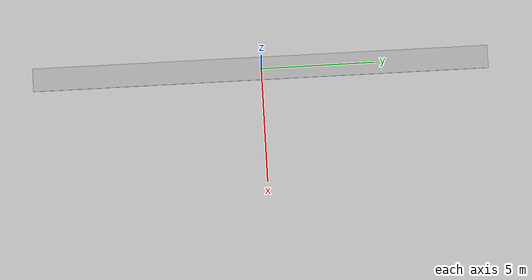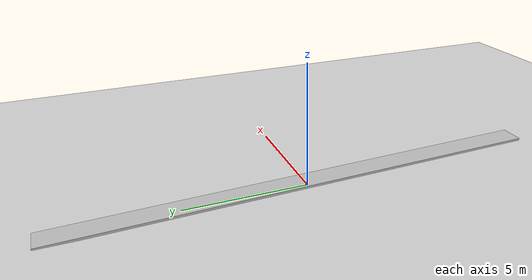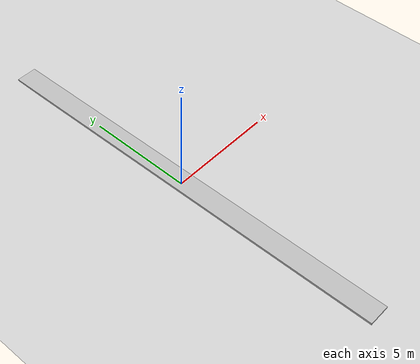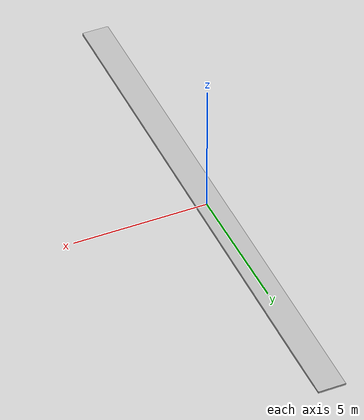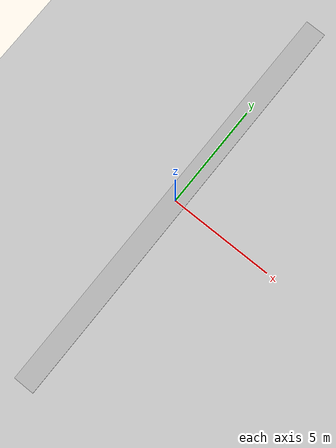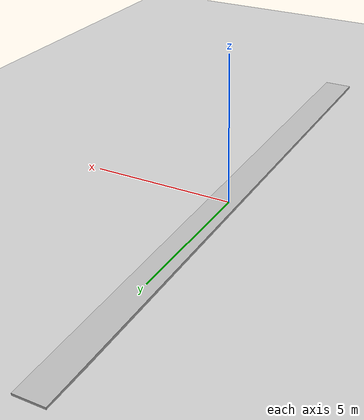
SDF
<?xml version="1.0" ?>
<sdf version="1.4">
  <world name="default">
    <include>
      <uri>model://ground_plane</uri>
    </include>
    <include>
      <uri>model://sun</uri>
    </include>
    <model name="box">
      <static>true</static>

      <pose>0 0 0.2 -0.02 0 0</pose>
      <link name="link">
        <collision name="collision">
          <geometry>
            <box>
              <size>1 20 0.1</size>
            </box>
          </geometry>
        </collision>
        <visual name="visual">
          <geometry>
            <box>
              <size>1 20 0.1</size>
            </box>
          </geometry>
        </visual>
      </link>
    </model>
  </world>
</sdf>
